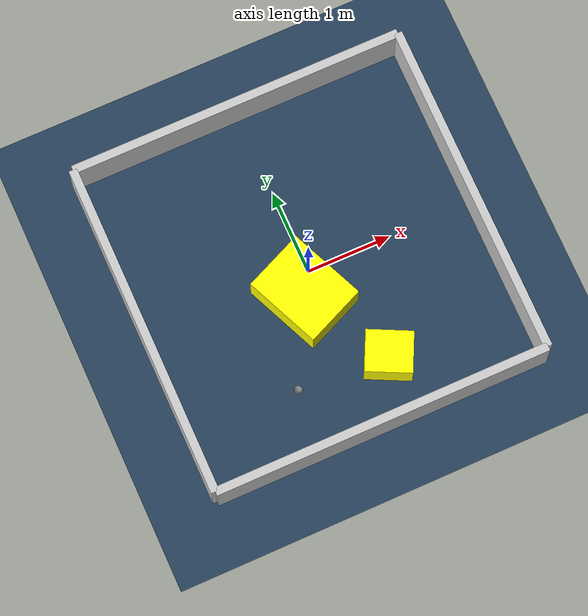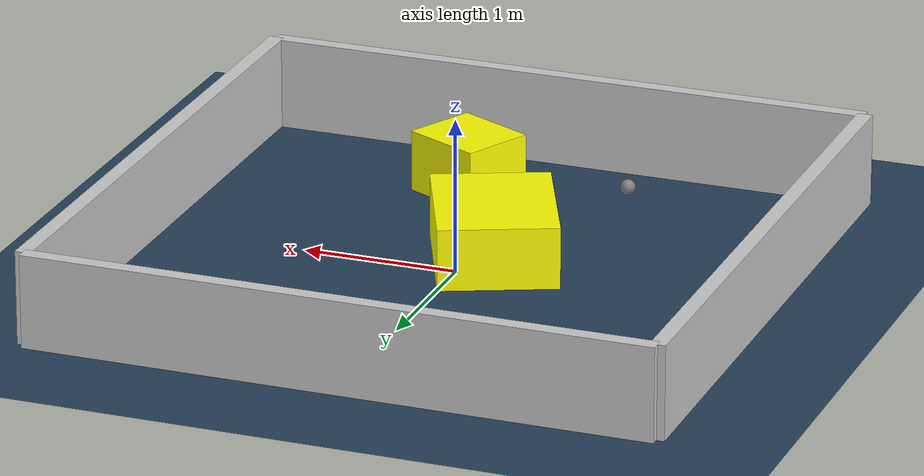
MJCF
<?xml version="1.0" ?>
<mujoco model="generated_environment">
  <option timestep="0.01" integrator="RK4" cone="elliptic"/>
  <default>
    <geom density="1"/>
  </default>
  <asset>
    <texture builtin="gradient" height="3072" rgb1="0.3 0.5 0.7" rgb2="0 0 0" type="skybox" width="512"/>
    <texture builtin="checker" height="300" mark="edge" markrgb="0.8 0.8 0.8" name="groundplane" rgb1="0.2 0.3 0.4" rgb2="0.1 0.2 0.3" type="2d" width="300"/>
    <material name="groundplane" reflectance="0.2" texrepeat="5 5" texture="groundplane" texuniform="true"/>
    <material name="robot" rgba="0.0 1.0 0.0 1"/>
  </asset>
  <worldbody>
    <light dir="0 0 -1" directional="true" pos="0 0 1.5"/>
    <geom condim="4" friction="1.0 0.005 0.001" material="groundplane" name="floor" size="0 0 0.05" type="plane"/>
    <body name="walls">
      <geom name="wall_1" condim="4" pos="-2.0 0.0 0.3" rgba="0.800000011920929 0.800000011920929 0.800000011920929 1.0" size="0.05 2.0 0.3" type="box"/>
      <geom name="wall_2" condim="4" pos="2.0 0.0 0.3" rgba="0.800000011920929 0.800000011920929 0.800000011920929 1.0" size="0.05 2.0 0.3" type="box"/>
      <geom name="wall_3" condim="4" pos="0.0 -2.0 0.3" rgba="0.800000011920929 0.800000011920929 0.800000011920929 1.0" size="2.0 0.05 0.3" type="box"/>
      <geom name="wall_4" condim="4" pos="0.0 2.0 0.3" rgba="0.800000011920929 0.800000011920929 0.800000011920929 1.0" size="2.0 0.05 0.3" type="box"/>
    </body>
    <body name="robot">
      <joint name="joint_x" type="slide" pos="0 0 0" axis="1 0 0"/>
      <joint name="joint_y" type="slide" pos="0 0 0" axis="0 1 0"/>
      <geom name="robot" type="sphere" pos="-0.6841699439209408 -1.2497304263718432 0.2" size="0.05" mass="5." friction="1.0 0.005 0.0001" condim="4"/>
      <site name="sensor_ball"/>
    </body>
    <body name="obstacle_1_movable">
      <geom name="obstacle_1_movable" condim="4" pos="-0.16124600443827664 -0.2535530200727114 0.2" euler="0 0 293.58652067907735" friction="1.0 0.005 0.001" rgba="1 1 0 1" size="0.4752326524946473 0.378631844830946 0.2" type="box" mass="0.1"/>
      <joint type="free"/>
    </body>
    <body name="obstacle_2_movable">
      <geom name="obstacle_2_movable" condim="4" pos="0.40247673640028125 -1.296477136190743 0.2" euler="0 0 63.82217900145395" friction="1.0 0.005 0.001" rgba="1 1 0 1" size="0.2418819999505115 0.2721288926932014 0.2" type="box" mass="0.1"/>
      <joint type="free"/>
    </body>
  </worldbody>
  <actuator>
    <motor name="actuator_x" joint="joint_x" gear="1" ctrlrange="-1 1"/>
    <motor name="actuator_y" joint="joint_y" gear="1" ctrlrange="-1 1"/>
  </actuator>
</mujoco>
